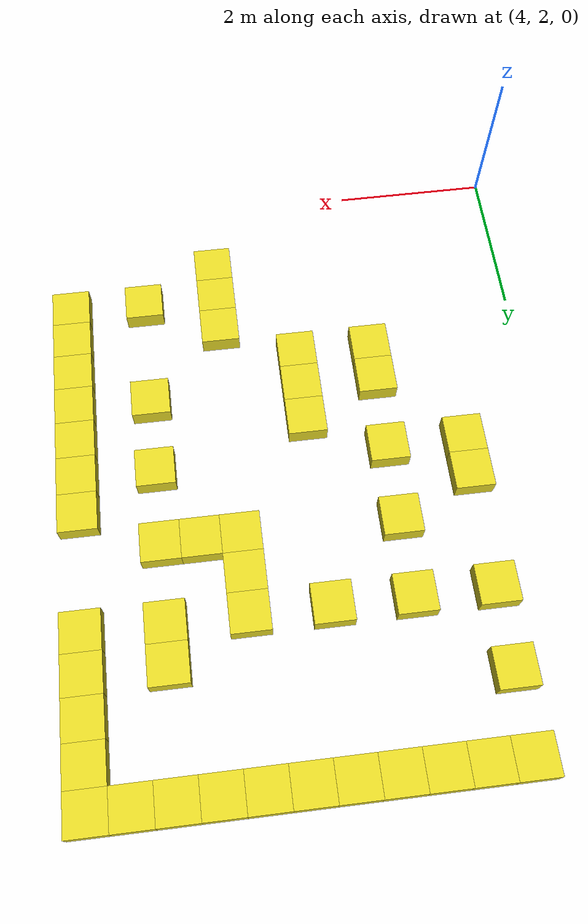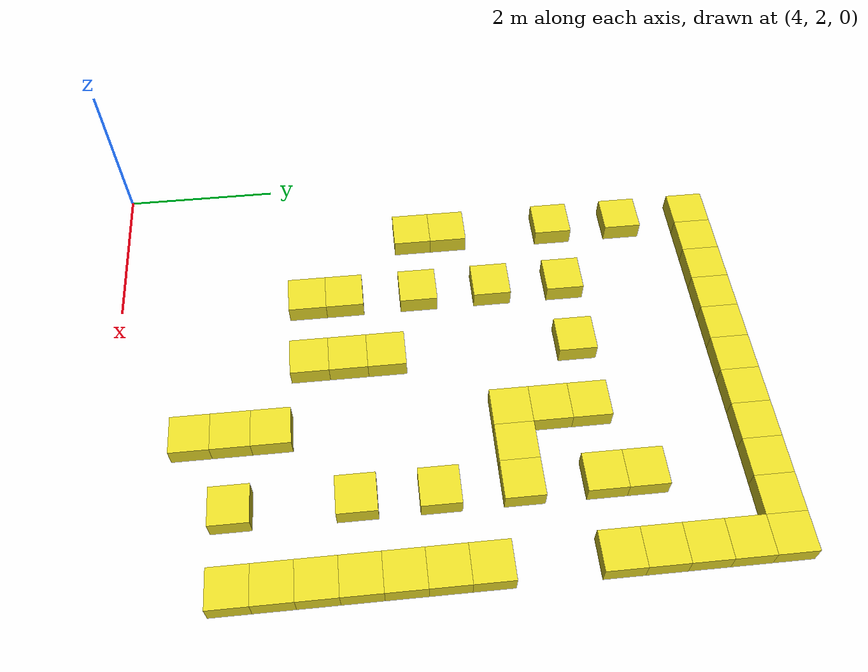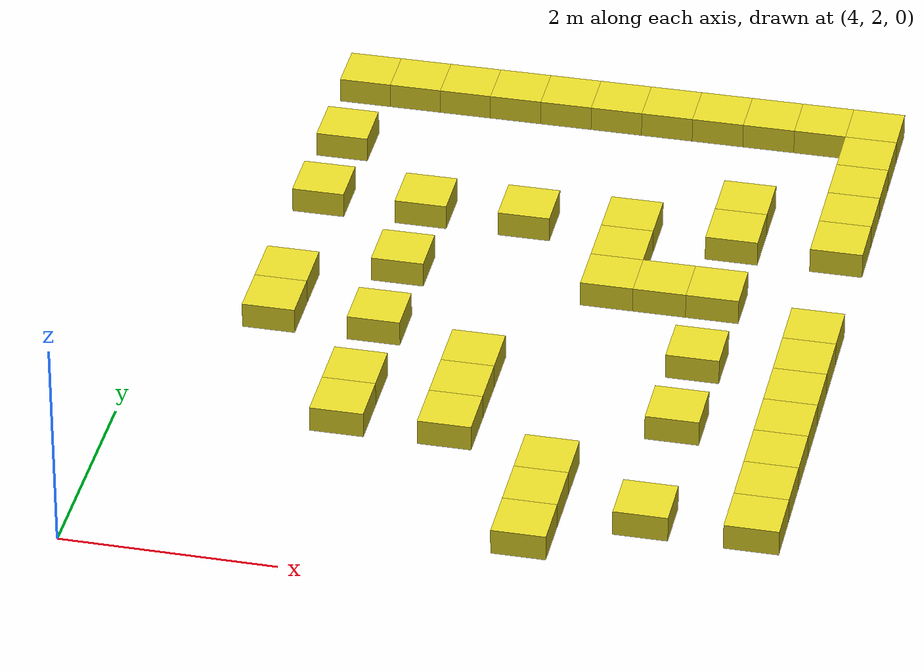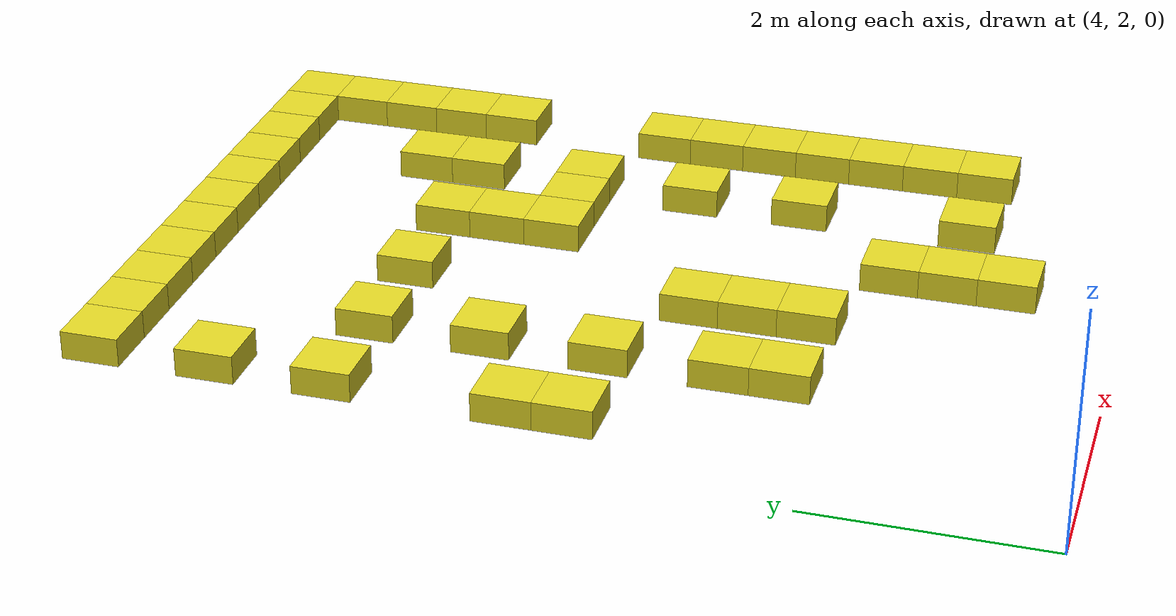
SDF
<sdf version="1.5">
 <world name="default">
  <include><uri>model://sun</uri></include>
  <model name="unit_box_53">
   <pose>5.000000 10.000000 0 0 -0 0</pose>
   <link name="link">
    <inertial>
     <mass>1</mass>
     <inertia><ixx>1</ixx><ixy>0</ixy><ixz>0</ixz><iyy>1</iyy><iyz>0</iyz><izz>1</izz></inertia>
    </inertial>
    <collision name="collision">
     <geometry><box><size>0.500000 0.500000 0.250000</size></box></geometry>
    </collision>
    <visual name="visual">
     <geometry><box><size>0.500000 0.500000 0.250000</size></box></geometry>
     <material>
      <script><uri>file://media/materials/scripts/gazebo.material</uri><name>Gazebo/Yellow</name></script>
     </material>
    </visual>
    <velocity_decay><linear>0</linear><angular>0</angular></velocity_decay>
   </link>
   <static>1</static>
  </model>
  <model name="unit_box_54">
   <pose>5.500000 10.000000 0 0 -0 0</pose>
   <link name="link">
    <inertial>
     <mass>1</mass>
     <inertia><ixx>1</ixx><ixy>0</ixy><ixz>0</ixz><iyy>1</iyy><iyz>0</iyz><izz>1</izz></inertia>
    </inertial>
    <collision name="collision">
     <geometry><box><size>0.500000 0.500000 0.250000</size></box></geometry>
    </collision>
    <visual name="visual">
     <geometry><box><size>0.500000 0.500000 0.250000</size></box></geometry>
     <material>
      <script><uri>file://media/materials/scripts/gazebo.material</uri><name>Gazebo/Yellow</name></script>
     </material>
    </visual>
    <velocity_decay><linear>0</linear><angular>0</angular></velocity_decay>
   </link>
   <static>1</static>
  </model>
  <model name="unit_box_55">
   <pose>6.000000 10.000000 0 0 -0 0</pose>
   <link name="link">
    <inertial>
     <mass>1</mass>
     <inertia><ixx>1</ixx><ixy>0</ixy><ixz>0</ixz><iyy>1</iyy><iyz>0</iyz><izz>1</izz></inertia>
    </inertial>
    <collision name="collision">
     <geometry><box><size>0.500000 0.500000 0.250000</size></box></geometry>
    </collision>
    <visual name="visual">
     <geometry><box><size>0.500000 0.500000 0.250000</size></box></geometry>
     <material>
      <script><uri>file://media/materials/scripts/gazebo.material</uri><name>Gazebo/Yellow</name></script>
     </material>
    </visual>
    <velocity_decay><linear>0</linear><angular>0</angular></velocity_decay>
   </link>
   <static>1</static>
  </model>
  <model name="unit_box_56">
   <pose>6.500000 10.000000 0 0 -0 0</pose>
   <link name="link">
    <inertial>
     <mass>1</mass>
     <inertia><ixx>1</ixx><ixy>0</ixy><ixz>0</ixz><iyy>1</iyy><iyz>0</iyz><izz>1</izz></inertia>
    </inertial>
    <collision name="collision">
     <geometry><box><size>0.500000 0.500000 0.250000</size></box></geometry>
    </collision>
    <visual name="visual">
     <geometry><box><size>0.500000 0.500000 0.250000</size></box></geometry>
     <material>
      <script><uri>file://media/materials/scripts/gazebo.material</uri><name>Gazebo/Yellow</name></script>
     </material>
    </visual>
    <velocity_decay><linear>0</linear><angular>0</angular></velocity_decay>
   </link>
   <static>1</static>
  </model>
  <model name="unit_box_57">
   <pose>7.000000 10.000000 0 0 -0 0</pose>
   <link name="link">
    <inertial>
     <mass>1</mass>
     <inertia><ixx>1</ixx><ixy>0</ixy><ixz>0</ixz><iyy>1</iyy><iyz>0</iyz><izz>1</izz></inertia>
    </inertial>
    <collision name="collision">
     <geometry><box><size>0.500000 0.500000 0.250000</size></box></geometry>
    </collision>
    <visual name="visual">
     <geometry><box><size>0.500000 0.500000 0.250000</size></box></geometry>
     <material>
      <script><uri>file://media/materials/scripts/gazebo.material</uri><name>Gazebo/Yellow</name></script>
     </material>
    </visual>
    <velocity_decay><linear>0</linear><angular>0</angular></velocity_decay>
   </link>
   <static>1</static>
  </model>
  <model name="unit_box_58">
   <pose>7.500000 10.000000 0 0 -0 0</pose>
   <link name="link">
    <inertial>
     <mass>1</mass>
     <inertia><ixx>1</ixx><ixy>0</ixy><ixz>0</ixz><iyy>1</iyy><iyz>0</iyz><izz>1</izz></inertia>
    </inertial>
    <collision name="collision">
     <geometry><box><size>0.500000 0.500000 0.250000</size></box></geometry>
    </collision>
    <visual name="visual">
     <geometry><box><size>0.500000 0.500000 0.250000</size></box></geometry>
     <material>
      <script><uri>file://media/materials/scripts/gazebo.material</uri><name>Gazebo/Yellow</name></script>
     </material>
    </visual>
    <velocity_decay><linear>0</linear><angular>0</angular></velocity_decay>
   </link>
   <static>1</static>
  </model>
  <model name="unit_box_59">
   <pose>8.000000 10.000000 0 0 -0 0</pose>
   <link name="link">
    <inertial>
     <mass>1</mass>
     <inertia><ixx>1</ixx><ixy>0</ixy><ixz>0</ixz><iyy>1</iyy><iyz>0</iyz><izz>1</izz></inertia>
    </inertial>
    <collision name="collision">
     <geometry><box><size>0.500000 0.500000 0.250000</size></box></geometry>
    </collision>
    <visual name="visual">
     <geometry><box><size>0.500000 0.500000 0.250000</size></box></geometry>
     <material>
      <script><uri>file://media/materials/scripts/gazebo.material</uri><name>Gazebo/Yellow</name></script>
     </material>
    </visual>
    <velocity_decay><linear>0</linear><angular>0</angular></velocity_decay>
   </link>
   <static>1</static>
  </model>
  <model name="unit_box_60">
   <pose>8.500000 10.000000 0 0 -0 0</pose>
   <link name="link">
    <inertial>
     <mass>1</mass>
     <inertia><ixx>1</ixx><ixy>0</ixy><ixz>0</ixz><iyy>1</iyy><iyz>0</iyz><izz>1</izz></inertia>
    </inertial>
    <collision name="collision">
     <geometry><box><size>0.500000 0.500000 0.250000</size></box></geometry>
    </collision>
    <visual name="visual">
     <geometry><box><size>0.500000 0.500000 0.250000</size></box></geometry>
     <material>
      <script><uri>file://media/materials/scripts/gazebo.material</uri><name>Gazebo/Yellow</name></script>
     </material>
    </visual>
    <velocity_decay><linear>0</linear><angular>0</angular></velocity_decay>
   </link>
   <static>1</static>
  </model>
  <model name="unit_box_61">
   <pose>9.000000 10.000000 0 0 -0 0</pose>
   <link name="link">
    <inertial>
     <mass>1</mass>
     <inertia><ixx>1</ixx><ixy>0</ixy><ixz>0</ixz><iyy>1</iyy><iyz>0</iyz><izz>1</izz></inertia>
    </inertial>
    <collision name="collision">
     <geometry><box><size>0.500000 0.500000 0.250000</size></box></geometry>
    </collision>
    <visual name="visual">
     <geometry><box><size>0.500000 0.500000 0.250000</size></box></geometry>
     <material>
      <script><uri>file://media/materials/scripts/gazebo.material</uri><name>Gazebo/Yellow</name></script>
     </material>
    </visual>
    <velocity_decay><linear>0</linear><angular>0</angular></velocity_decay>
   </link>
   <static>1</static>
  </model>
  <model name="unit_box_62">
   <pose>9.500000 10.000000 0 0 -0 0</pose>
   <link name="link">
    <inertial>
     <mass>1</mass>
     <inertia><ixx>1</ixx><ixy>0</ixy><ixz>0</ixz><iyy>1</iyy><iyz>0</iyz><izz>1</izz></inertia>
    </inertial>
    <collision name="collision">
     <geometry><box><size>0.500000 0.500000 0.250000</size></box></geometry>
    </collision>
    <visual name="visual">
     <geometry><box><size>0.500000 0.500000 0.250000</size></box></geometry>
     <material>
      <script><uri>file://media/materials/scripts/gazebo.material</uri><name>Gazebo/Yellow</name></script>
     </material>
    </visual>
    <velocity_decay><linear>0</linear><angular>0</angular></velocity_decay>
   </link>
   <static>1</static>
  </model>
  <model name="unit_box_63">
   <pose>10.000000 10.000000 0 0 -0 0</pose>
   <link name="link">
    <inertial>
     <mass>1</mass>
     <inertia><ixx>1</ixx><ixy>0</ixy><ixz>0</ixz><iyy>1</iyy><iyz>0</iyz><izz>1</izz></inertia>
    </inertial>
    <collision name="collision">
     <geometry><box><size>0.500000 0.500000 0.250000</size></box></geometry>
    </collision>
    <visual name="visual">
     <geometry><box><size>0.500000 0.500000 0.250000</size></box></geometry>
     <material>
      <script><uri>file://media/materials/scripts/gazebo.material</uri><name>Gazebo/Yellow</name></script>
     </material>
    </visual>
    <velocity_decay><linear>0</linear><angular>0</angular></velocity_decay>
   </link>
   <static>1</static>
  </model>
  <model name="unit_box_71">
   <pose>10.000000 3.500000 0 0 -0 0</pose>
   <link name="link">
    <inertial>
     <mass>1</mass>
     <inertia><ixx>1</ixx><ixy>0</ixy><ixz>0</ixz><iyy>1</iyy><iyz>0</iyz><izz>1</izz></inertia>
    </inertial>
    <collision name="collision">
     <geometry><box><size>0.500000 0.500000 0.250000</size></box></geometry>
    </collision>
    <visual name="visual">
     <geometry><box><size>0.500000 0.500000 0.250000</size></box></geometry>
     <material>
      <script><uri>file://media/materials/scripts/gazebo.material</uri><name>Gazebo/Yellow</name></script>
     </material>
    </visual>
    <velocity_decay><linear>0</linear><angular>0</angular></velocity_decay>
   </link>
   <static>1</static>
  </model>
  <model name="unit_box_72">
   <pose>10.000000 4.000000 0 0 -0 0</pose>
   <link name="link">
    <inertial>
     <mass>1</mass>
     <inertia><ixx>1</ixx><ixy>0</ixy><ixz>0</ixz><iyy>1</iyy><iyz>0</iyz><izz>1</izz></inertia>
    </inertial>
    <collision name="collision">
     <geometry><box><size>0.500000 0.500000 0.250000</size></box></geometry>
    </collision>
    <visual name="visual">
     <geometry><box><size>0.500000 0.500000 0.250000</size></box></geometry>
     <material>
      <script><uri>file://media/materials/scripts/gazebo.material</uri><name>Gazebo/Yellow</name></script>
     </material>
    </visual>
    <velocity_decay><linear>0</linear><angular>0</angular></velocity_decay>
   </link>
   <static>1</static>
  </model>
  <model name="unit_box_73">
   <pose>10.000000 4.500000 0 0 -0 0</pose>
   <link name="link">
    <inertial>
     <mass>1</mass>
     <inertia><ixx>1</ixx><ixy>0</ixy><ixz>0</ixz><iyy>1</iyy><iyz>0</iyz><izz>1</izz></inertia>
    </inertial>
    <collision name="collision">
     <geometry><box><size>0.500000 0.500000 0.250000</size></box></geometry>
    </collision>
    <visual name="visual">
     <geometry><box><size>0.500000 0.500000 0.250000</size></box></geometry>
     <material>
      <script><uri>file://media/materials/scripts/gazebo.material</uri><name>Gazebo/Yellow</name></script>
     </material>
    </visual>
    <velocity_decay><linear>0</linear><angular>0</angular></velocity_decay>
   </link>
   <static>1</static>
  </model>
  <model name="unit_box_74">
   <pose>10.000000 5.000000 0 0 -0 0</pose>
   <link name="link">
    <inertial>
     <mass>1</mass>
     <inertia><ixx>1</ixx><ixy>0</ixy><ixz>0</ixz><iyy>1</iyy><iyz>0</iyz><izz>1</izz></inertia>
    </inertial>
    <collision name="collision">
     <geometry><box><size>0.500000 0.500000 0.250000</size></box></geometry>
    </collision>
    <visual name="visual">
     <geometry><box><size>0.500000 0.500000 0.250000</size></box></geometry>
     <material>
      <script><uri>file://media/materials/scripts/gazebo.material</uri><name>Gazebo/Yellow</name></script>
     </material>
    </visual>
    <velocity_decay><linear>0</linear><angular>0</angular></velocity_decay>
   </link>
   <static>1</static>
  </model>
  <model name="unit_box_75">
   <pose>10.000000 5.500000 0 0 -0 0</pose>
   <link name="link">
    <inertial>
     <mass>1</mass>
     <inertia><ixx>1</ixx><ixy>0</ixy><ixz>0</ixz><iyy>1</iyy><iyz>0</iyz><izz>1</izz></inertia>
    </inertial>
    <collision name="collision">
     <geometry><box><size>0.500000 0.500000 0.250000</size></box></geometry>
    </collision>
    <visual name="visual">
     <geometry><box><size>0.500000 0.500000 0.250000</size></box></geometry>
     <material>
      <script><uri>file://media/materials/scripts/gazebo.material</uri><name>Gazebo/Yellow</name></script>
     </material>
    </visual>
    <velocity_decay><linear>0</linear><angular>0</angular></velocity_decay>
   </link>
   <static>1</static>
  </model>
  <model name="unit_box_76">
   <pose>10.000000 6.000000 0 0 -0 0</pose>
   <link name="link">
    <inertial>
     <mass>1</mass>
     <inertia><ixx>1</ixx><ixy>0</ixy><ixz>0</ixz><iyy>1</iyy><iyz>0</iyz><izz>1</izz></inertia>
    </inertial>
    <collision name="collision">
     <geometry><box><size>0.500000 0.500000 0.250000</size></box></geometry>
    </collision>
    <visual name="visual">
     <geometry><box><size>0.500000 0.500000 0.250000</size></box></geometry>
     <material>
      <script><uri>file://media/materials/scripts/gazebo.material</uri><name>Gazebo/Yellow</name></script>
     </material>
    </visual>
    <velocity_decay><linear>0</linear><angular>0</angular></velocity_decay>
   </link>
   <static>1</static>
  </model>
  <model name="unit_box_77">
   <pose>10.000000 6.500000 0 0 -0 0</pose>
   <link name="link">
    <inertial>
     <mass>1</mass>
     <inertia><ixx>1</ixx><ixy>0</ixy><ixz>0</ixz><iyy>1</iyy><iyz>0</iyz><izz>1</izz></inertia>
    </inertial>
    <collision name="collision">
     <geometry><box><size>0.500000 0.500000 0.250000</size></box></geometry>
    </collision>
    <visual name="visual">
     <geometry><box><size>0.500000 0.500000 0.250000</size></box></geometry>
     <material>
      <script><uri>file://media/materials/scripts/gazebo.material</uri><name>Gazebo/Yellow</name></script>
     </material>
    </visual>
    <velocity_decay><linear>0</linear><angular>0</angular></velocity_decay>
   </link>
   <static>1</static>
  </model>
  <model name="unit_box_78">
   <pose>10.000000 8.000000 0 0 -0 0</pose>
   <link name="link">
    <inertial>
     <mass>1</mass>
     <inertia><ixx>1</ixx><ixy>0</ixy><ixz>0</ixz><iyy>1</iyy><iyz>0</iyz><izz>1</izz></inertia>
    </inertial>
    <collision name="collision">
     <geometry><box><size>0.500000 0.500000 0.250000</size></box></geometry>
    </collision>
    <visual name="visual">
     <geometry><box><size>0.500000 0.500000 0.250000</size></box></geometry>
     <material>
      <script><uri>file://media/materials/scripts/gazebo.material</uri><name>Gazebo/Yellow</name></script>
     </material>
    </visual>
    <velocity_decay><linear>0</linear><angular>0</angular></velocity_decay>
   </link>
   <static>1</static>
  </model>
  <model name="unit_box_79">
   <pose>10.000000 8.500000 0 0 -0 0</pose>
   <link name="link">
    <inertial>
     <mass>1</mass>
     <inertia><ixx>1</ixx><ixy>0</ixy><ixz>0</ixz><iyy>1</iyy><iyz>0</iyz><izz>1</izz></inertia>
    </inertial>
    <collision name="collision">
     <geometry><box><size>0.500000 0.500000 0.250000</size></box></geometry>
    </collision>
    <visual name="visual">
     <geometry><box><size>0.500000 0.500000 0.250000</size></box></geometry>
     <material>
      <script><uri>file://media/materials/scripts/gazebo.material</uri><name>Gazebo/Yellow</name></script>
     </material>
    </visual>
    <velocity_decay><linear>0</linear><angular>0</angular></velocity_decay>
   </link>
   <static>1</static>
  </model>
  <model name="unit_box_80">
   <pose>10.000000 9.000000 0 0 -0 0</pose>
   <link name="link">
    <inertial>
     <mass>1</mass>
     <inertia><ixx>1</ixx><ixy>0</ixy><ixz>0</ixz><iyy>1</iyy><iyz>0</iyz><izz>1</izz></inertia>
    </inertial>
    <collision name="collision">
     <geometry><box><size>0.500000 0.500000 0.250000</size></box></geometry>
    </collision>
    <visual name="visual">
     <geometry><box><size>0.500000 0.500000 0.250000</size></box></geometry>
     <material>
      <script><uri>file://media/materials/scripts/gazebo.material</uri><name>Gazebo/Yellow</name></script>
     </material>
    </visual>
    <velocity_decay><linear>0</linear><angular>0</angular></velocity_decay>
   </link>
   <static>1</static>
  </model>
  <model name="unit_box_81">
   <pose>10.000000 9.500000 0 0 -0 0</pose>
   <link name="link">
    <inertial>
     <mass>1</mass>
     <inertia><ixx>1</ixx><ixy>0</ixy><ixz>0</ixz><iyy>1</iyy><iyz>0</iyz><izz>1</izz></inertia>
    </inertial>
    <collision name="collision">
     <geometry><box><size>0.500000 0.500000 0.250000</size></box></geometry>
    </collision>
    <visual name="visual">
     <geometry><box><size>0.500000 0.500000 0.250000</size></box></geometry>
     <material>
      <script><uri>file://media/materials/scripts/gazebo.material</uri><name>Gazebo/Yellow</name></script>
     </material>
    </visual>
    <velocity_decay><linear>0</linear><angular>0</angular></velocity_decay>
   </link>
   <static>1</static>
  </model>
  <model name="unit_box_82">
   <pose>10.000000 10.000000 0 0 -0 0</pose>
   <link name="link">
    <inertial>
     <mass>1</mass>
     <inertia><ixx>1</ixx><ixy>0</ixy><ixz>0</ixz><iyy>1</iyy><iyz>0</iyz><izz>1</izz></inertia>
    </inertial>
    <collision name="collision">
     <geometry><box><size>0.500000 0.500000 0.250000</size></box></geometry>
    </collision>
    <visual name="visual">
     <geometry><box><size>0.500000 0.500000 0.250000</size></box></geometry>
     <material>
      <script><uri>file://media/materials/scripts/gazebo.material</uri><name>Gazebo/Yellow</name></script>
     </material>
    </visual>
    <velocity_decay><linear>0</linear><angular>0</angular></velocity_decay>
   </link>
   <static>1</static>
  </model>
  <model name="unit_box_86">
   <pose>8.000000 7.500000 0 0 -0 0</pose>
   <link name="link">
    <inertial>
     <mass>1</mass>
     <inertia><ixx>1</ixx><ixy>0</ixy><ixz>0</ixz><iyy>1</iyy><iyz>0</iyz><izz>1</izz></inertia>
    </inertial>
    <collision name="collision">
     <geometry><box><size>0.500000 0.500000 0.250000</size></box></geometry>
    </collision>
    <visual name="visual">
     <geometry><box><size>0.500000 0.500000 0.250000</size></box></geometry>
     <material>
      <script><uri>file://media/materials/scripts/gazebo.material</uri><name>Gazebo/Yellow</name></script>
     </material>
    </visual>
    <velocity_decay><linear>0</linear><angular>0</angular></velocity_decay>
   </link>
   <static>1</static>
  </model>
  <model name="unit_box_87">
   <pose>5.000000 8.000000 0 0 -0 0</pose>
   <link name="link">
    <inertial>
     <mass>1</mass>
     <inertia><ixx>1</ixx><ixy>0</ixy><ixz>0</ixz><iyy>1</iyy><iyz>0</iyz><izz>1</izz></inertia>
    </inertial>
    <collision name="collision">
     <geometry><box><size>0.500000 0.500000 0.250000</size></box></geometry>
    </collision>
    <visual name="visual">
     <geometry><box><size>0.500000 0.500000 0.250000</size></box></geometry>
     <material>
      <script><uri>file://media/materials/scripts/gazebo.material</uri><name>Gazebo/Yellow</name></script>
     </material>
    </visual>
    <velocity_decay><linear>0</linear><angular>0</angular></velocity_decay>
   </link>
   <static>1</static>
  </model>
  <model name="unit_box_88">
   <pose>5.000000 6.000000 0 0 -0 0</pose>
   <link name="link">
    <inertial>
     <mass>1</mass>
     <inertia><ixx>1</ixx><ixy>0</ixy><ixz>0</ixz><iyy>1</iyy><iyz>0</iyz><izz>1</izz></inertia>
    </inertial>
    <collision name="collision">
     <geometry><box><size>0.500000 0.500000 0.250000</size></box></geometry>
    </collision>
    <visual name="visual">
     <geometry><box><size>0.500000 0.500000 0.250000</size></box></geometry>
     <material>
      <script><uri>file://media/materials/scripts/gazebo.material</uri><name>Gazebo/Yellow</name></script>
     </material>
    </visual>
    <velocity_decay><linear>0</linear><angular>0</angular></velocity_decay>
   </link>
   <static>1</static>
  </model>
  <model name="unit_box_89">
   <pose>6.000000 6.000000 0 0 -0 0</pose>
   <link name="link">
    <inertial>
     <mass>1</mass>
     <inertia><ixx>1</ixx><ixy>0</ixy><ixz>0</ixz><iyy>1</iyy><iyz>0</iyz><izz>1</izz></inertia>
    </inertial>
    <collision name="collision">
     <geometry><box><size>0.500000 0.500000 0.250000</size></box></geometry>
    </collision>
    <visual name="visual">
     <geometry><box><size>0.500000 0.500000 0.250000</size></box></geometry>
     <material>
      <script><uri>file://media/materials/scripts/gazebo.material</uri><name>Gazebo/Yellow</name></script>
     </material>
    </visual>
    <velocity_decay><linear>0</linear><angular>0</angular></velocity_decay>
   </link>
   <static>1</static>
  </model>
  <model name="unit_box_94">
   <pose>6.000000 6.000000 0 0 -0 0</pose>
   <link name="link">
    <inertial>
     <mass>1</mass>
     <inertia><ixx>1</ixx><ixy>0</ixy><ixz>0</ixz><iyy>1</iyy><iyz>0</iyz><izz>1</izz></inertia>
    </inertial>
    <collision name="collision">
     <geometry><box><size>0.500000 0.500000 0.250000</size></box></geometry>
    </collision>
    <visual name="visual">
     <geometry><box><size>0.500000 0.500000 0.250000</size></box></geometry>
     <material>
      <script><uri>file://media/materials/scripts/gazebo.material</uri><name>Gazebo/Yellow</name></script>
     </material>
    </visual>
    <velocity_decay><linear>0</linear><angular>0</angular></velocity_decay>
   </link>
   <static>1</static>
  </model>
  <model name="unit_box_95">
   <pose>6.000000 6.000000 0 0 -0 0</pose>
   <link name="link">
    <inertial>
     <mass>1</mass>
     <inertia><ixx>1</ixx><ixy>0</ixy><ixz>0</ixz><iyy>1</iyy><iyz>0</iyz><izz>1</izz></inertia>
    </inertial>
    <collision name="collision">
     <geometry><box><size>0.500000 0.500000 0.250000</size></box></geometry>
    </collision>
    <visual name="visual">
     <geometry><box><size>0.500000 0.500000 0.250000</size></box></geometry>
     <material>
      <script><uri>file://media/materials/scripts/gazebo.material</uri><name>Gazebo/Yellow</name></script>
     </material>
    </visual>
    <velocity_decay><linear>0</linear><angular>0</angular></velocity_decay>
   </link>
   <static>1</static>
  </model>
  <model name="unit_box_99">
   <pose>7.000000 5.000000 0 0 -0 0</pose>
   <link name="link">
    <inertial>
     <mass>1</mass>
     <inertia><ixx>1</ixx><ixy>0</ixy><ixz>0</ixz><iyy>1</iyy><iyz>0</iyz><izz>1</izz></inertia>
    </inertial>
    <collision name="collision">
     <geometry><box><size>0.500000 0.500000 0.250000</size></box></geometry>
    </collision>
    <visual name="visual">
     <geometry><box><size>0.500000 0.500000 0.250000</size></box></geometry>
     <material>
      <script><uri>file://media/materials/scripts/gazebo.material</uri><name>Gazebo/Yellow</name></script>
     </material>
    </visual>
    <velocity_decay><linear>0</linear><angular>0</angular></velocity_decay>
   </link>
   <static>1</static>
  </model>
  <model name="unit_box_101">
   <pose>8.000000 4.000000 0 0 -0 0</pose>
   <link name="link">
    <inertial>
     <mass>1</mass>
     <inertia><ixx>1</ixx><ixy>0</ixy><ixz>0</ixz><iyy>1</iyy><iyz>0</iyz><izz>1</izz></inertia>
    </inertial>
    <collision name="collision">
     <geometry><box><size>0.500000 0.500000 0.250000</size></box></geometry>
    </collision>
    <visual name="visual">
     <geometry><box><size>0.500000 0.500000 0.250000</size></box></geometry>
     <material>
      <script><uri>file://media/materials/scripts/gazebo.material</uri><name>Gazebo/Yellow</name></script>
     </material>
    </visual>
    <velocity_decay><linear>0</linear><angular>0</angular></velocity_decay>
   </link>
   <static>1</static>
  </model>
  <model name="unit_box_102">
   <pose>9.000000 3.500000 0 0 -0 0</pose>
   <link name="link">
    <inertial>
     <mass>1</mass>
     <inertia><ixx>1</ixx><ixy>0</ixy><ixz>0</ixz><iyy>1</iyy><iyz>0</iyz><izz>1</izz></inertia>
    </inertial>
    <collision name="collision">
     <geometry><box><size>0.500000 0.500000 0.250000</size></box></geometry>
    </collision>
    <visual name="visual">
     <geometry><box><size>0.500000 0.500000 0.250000</size></box></geometry>
     <material>
      <script><uri>file://media/materials/scripts/gazebo.material</uri><name>Gazebo/Yellow</name></script>
     </material>
    </visual>
    <velocity_decay><linear>0</linear><angular>0</angular></velocity_decay>
   </link>
   <static>1</static>
  </model>
  <model name="unit_box_105">
   <pose>5.000000 9.000000 0 0 -0 0</pose>
   <link name="link">
    <inertial>
     <mass>1</mass>
     <inertia><ixx>1</ixx><ixy>0</ixy><ixz>0</ixz><iyy>1</iyy><iyz>0</iyz><izz>1</izz></inertia>
    </inertial>
    <collision name="collision">
     <geometry><box><size>0.500000 0.500000 0.250000</size></box></geometry>
    </collision>
    <visual name="visual">
     <geometry><box><size>0.500000 0.500000 0.250000</size></box></geometry>
     <material>
      <script><uri>file://media/materials/scripts/gazebo.material</uri><name>Gazebo/Yellow</name></script>
     </material>
    </visual>
    <velocity_decay><linear>0</linear><angular>0</angular></velocity_decay>
   </link>
   <static>1</static>
  </model>
  <model name="unit_box_106">
   <pose>9.000000 8.500000 0 0 -0 0</pose>
   <link name="link">
    <inertial>
     <mass>1</mass>
     <inertia><ixx>1</ixx><ixy>0</ixy><ixz>0</ixz><iyy>1</iyy><iyz>0</iyz><izz>1</izz></inertia>
    </inertial>
    <collision name="collision">
     <geometry><box><size>0.500000 0.500000 0.250000</size></box></geometry>
    </collision>
    <visual name="visual">
     <geometry><box><size>0.500000 0.500000 0.250000</size></box></geometry>
     <material>
      <script><uri>file://media/materials/scripts/gazebo.material</uri><name>Gazebo/Yellow</name></script>
     </material>
    </visual>
    <velocity_decay><linear>0</linear><angular>0</angular></velocity_decay>
   </link>
   <static>1</static>
  </model>
  <model name="unit_box_107">
   <pose>7.000000 8.000000 0 0 -0 0</pose>
   <link name="link">
    <inertial>
     <mass>1</mass>
     <inertia><ixx>1</ixx><ixy>0</ixy><ixz>0</ixz><iyy>1</iyy><iyz>0</iyz><izz>1</izz></inertia>
    </inertial>
    <collision name="collision">
     <geometry><box><size>0.500000 0.500000 0.250000</size></box></geometry>
    </collision>
    <visual name="visual">
     <geometry><box><size>0.500000 0.500000 0.250000</size></box></geometry>
     <material>
      <script><uri>file://media/materials/scripts/gazebo.material</uri><name>Gazebo/Yellow</name></script>
     </material>
    </visual>
    <velocity_decay><linear>0</linear><angular>0</angular></velocity_decay>
   </link>
   <static>1</static>
  </model>
  <model name="unit_box_111">
   <pose>6.000000 7.000000 0 0 -0 0</pose>
   <link name="link">
    <inertial>
     <mass>1</mass>
     <inertia><ixx>1</ixx><ixy>0</ixy><ixz>0</ixz><iyy>1</iyy><iyz>0</iyz><izz>1</izz></inertia>
    </inertial>
    <collision name="collision">
     <geometry><box><size>0.500000 0.500000 0.250000</size></box></geometry>
    </collision>
    <visual name="visual">
     <geometry><box><size>0.500000 0.500000 0.250000</size></box></geometry>
     <material>
      <script><uri>file://media/materials/scripts/gazebo.material</uri><name>Gazebo/Yellow</name></script>
     </material>
    </visual>
    <velocity_decay><linear>0</linear><angular>0</angular></velocity_decay>
   </link>
   <static>1</static>
  </model>
  <model name="unit_box_112">
   <pose>5.000000 6.500000 0 0 -0 0</pose>
   <link name="link">
    <inertial>
     <mass>1</mass>
     <inertia><ixx>1</ixx><ixy>0</ixy><ixz>0</ixz><iyy>1</iyy><iyz>0</iyz><izz>1</izz></inertia>
    </inertial>
    <collision name="collision">
     <geometry><box><size>0.500000 0.500000 0.250000</size></box></geometry>
    </collision>
    <visual name="visual">
     <geometry><box><size>0.500000 0.500000 0.250000</size></box></geometry>
     <material>
      <script><uri>file://media/materials/scripts/gazebo.material</uri><name>Gazebo/Yellow</name></script>
     </material>
    </visual>
    <velocity_decay><linear>0</linear><angular>0</angular></velocity_decay>
   </link>
   <static>1</static>
  </model>
  <model name="unit_box_113">
   <pose>9.000000 6.000000 0 0 -0 0</pose>
   <link name="link">
    <inertial>
     <mass>1</mass>
     <inertia><ixx>1</ixx><ixy>0</ixy><ixz>0</ixz><iyy>1</iyy><iyz>0</iyz><izz>1</izz></inertia>
    </inertial>
    <collision name="collision">
     <geometry><box><size>0.500000 0.500000 0.250000</size></box></geometry>
    </collision>
    <visual name="visual">
     <geometry><box><size>0.500000 0.500000 0.250000</size></box></geometry>
     <material>
      <script><uri>file://media/materials/scripts/gazebo.material</uri><name>Gazebo/Yellow</name></script>
     </material>
    </visual>
    <velocity_decay><linear>0</linear><angular>0</angular></velocity_decay>
   </link>
   <static>1</static>
  </model>
  <model name="unit_box_115">
   <pose>6.000000 5.000000 0 0 -0 0</pose>
   <link name="link">
    <inertial>
     <mass>1</mass>
     <inertia><ixx>1</ixx><ixy>0</ixy><ixz>0</ixz><iyy>1</iyy><iyz>0</iyz><izz>1</izz></inertia>
    </inertial>
    <collision name="collision">
     <geometry><box><size>0.500000 0.500000 0.250000</size></box></geometry>
    </collision>
    <visual name="visual">
     <geometry><box><size>0.500000 0.500000 0.250000</size></box></geometry>
     <material>
      <script><uri>file://media/materials/scripts/gazebo.material</uri><name>Gazebo/Yellow</name></script>
     </material>
    </visual>
    <velocity_decay><linear>0</linear><angular>0</angular></velocity_decay>
   </link>
   <static>1</static>
  </model>
  <model name="unit_box_116">
   <pose>7.000000 4.500000 0 0 -0 0</pose>
   <link name="link">
    <inertial>
     <mass>1</mass>
     <inertia><ixx>1</ixx><ixy>0</ixy><ixz>0</ixz><iyy>1</iyy><iyz>0</iyz><izz>1</izz></inertia>
    </inertial>
    <collision name="collision">
     <geometry><box><size>0.500000 0.500000 0.250000</size></box></geometry>
    </collision>
    <visual name="visual">
     <geometry><box><size>0.500000 0.500000 0.250000</size></box></geometry>
     <material>
      <script><uri>file://media/materials/scripts/gazebo.material</uri><name>Gazebo/Yellow</name></script>
     </material>
    </visual>
    <velocity_decay><linear>0</linear><angular>0</angular></velocity_decay>
   </link>
   <static>1</static>
  </model>
  <model name="unit_box_122">
   <pose>9.000000 7.000000 0 0 -0 0</pose>
   <link name="link">
    <inertial>
     <mass>1</mass>
     <inertia><ixx>1</ixx><ixy>0</ixy><ixz>0</ixz><iyy>1</iyy><iyz>0</iyz><izz>1</izz></inertia>
    </inertial>
    <collision name="collision">
     <geometry><box><size>0.500000 0.500000 0.250000</size></box></geometry>
    </collision>
    <visual name="visual">
     <geometry><box><size>0.500000 0.500000 0.250000</size></box></geometry>
     <material>
      <script><uri>file://media/materials/scripts/gazebo.material</uri><name>Gazebo/Yellow</name></script>
     </material>
    </visual>
    <velocity_decay><linear>0</linear><angular>0</angular></velocity_decay>
   </link>
   <static>1</static>
  </model>
  <model name="unit_box_124">
   <pose>9.000000 6.000000 0 0 -0 0</pose>
   <link name="link">
    <inertial>
     <mass>1</mass>
     <inertia><ixx>1</ixx><ixy>0</ixy><ixz>0</ixz><iyy>1</iyy><iyz>0</iyz><izz>1</izz></inertia>
    </inertial>
    <collision name="collision">
     <geometry><box><size>0.500000 0.500000 0.250000</size></box></geometry>
    </collision>
    <visual name="visual">
     <geometry><box><size>0.500000 0.500000 0.250000</size></box></geometry>
     <material>
      <script><uri>file://media/materials/scripts/gazebo.material</uri><name>Gazebo/Yellow</name></script>
     </material>
    </visual>
    <velocity_decay><linear>0</linear><angular>0</angular></velocity_decay>
   </link>
   <static>1</static>
  </model>
  <model name="unit_box_125">
   <pose>7.000000 5.500000 0 0 -0 0</pose>
   <link name="link">
    <inertial>
     <mass>1</mass>
     <inertia><ixx>1</ixx><ixy>0</ixy><ixz>0</ixz><iyy>1</iyy><iyz>0</iyz><izz>1</izz></inertia>
    </inertial>
    <collision name="collision">
     <geometry><box><size>0.500000 0.500000 0.250000</size></box></geometry>
    </collision>
    <visual name="visual">
     <geometry><box><size>0.500000 0.500000 0.250000</size></box></geometry>
     <material>
      <script><uri>file://media/materials/scripts/gazebo.material</uri><name>Gazebo/Yellow</name></script>
     </material>
    </visual>
    <velocity_decay><linear>0</linear><angular>0</angular></velocity_decay>
   </link>
   <static>1</static>
  </model>
  <model name="unit_box_126">
   <pose>9.000000 5.000000 0 0 -0 0</pose>
   <link name="link">
    <inertial>
     <mass>1</mass>
     <inertia><ixx>1</ixx><ixy>0</ixy><ixz>0</ixz><iyy>1</iyy><iyz>0</iyz><izz>1</izz></inertia>
    </inertial>
    <collision name="collision">
     <geometry><box><size>0.500000 0.500000 0.250000</size></box></geometry>
    </collision>
    <visual name="visual">
     <geometry><box><size>0.500000 0.500000 0.250000</size></box></geometry>
     <material>
      <script><uri>file://media/materials/scripts/gazebo.material</uri><name>Gazebo/Yellow</name></script>
     </material>
    </visual>
    <velocity_decay><linear>0</linear><angular>0</angular></velocity_decay>
   </link>
   <static>1</static>
  </model>
  <model name="unit_box_129">
   <pose>8.000000 3.500000 0 0 -0 0</pose>
   <link name="link">
    <inertial>
     <mass>1</mass>
     <inertia><ixx>1</ixx><ixy>0</ixy><ixz>0</ixz><iyy>1</iyy><iyz>0</iyz><izz>1</izz></inertia>
    </inertial>
    <collision name="collision">
     <geometry><box><size>0.500000 0.500000 0.250000</size></box></geometry>
    </collision>
    <visual name="visual">
     <geometry><box><size>0.500000 0.500000 0.250000</size></box></geometry>
     <material>
      <script><uri>file://media/materials/scripts/gazebo.material</uri><name>Gazebo/Yellow</name></script>
     </material>
    </visual>
    <velocity_decay><linear>0</linear><angular>0</angular></velocity_decay>
   </link>
   <static>1</static>
  </model>
  <model name="unit_box_131">
   <pose>7.000000 8.000000 0 0 -0 0</pose>
   <link name="link">
    <inertial>
     <mass>1</mass>
     <inertia><ixx>1</ixx><ixy>0</ixy><ixz>0</ixz><iyy>1</iyy><iyz>0</iyz><izz>1</izz></inertia>
    </inertial>
    <collision name="collision">
     <geometry><box><size>0.500000 0.500000 0.250000</size></box></geometry>
    </collision>
    <visual name="visual">
     <geometry><box><size>0.500000 0.500000 0.250000</size></box></geometry>
     <material>
      <script><uri>file://media/materials/scripts/gazebo.material</uri><name>Gazebo/Yellow</name></script>
     </material>
    </visual>
    <velocity_decay><linear>0</linear><angular>0</angular></velocity_decay>
   </link>
   <static>1</static>
  </model>
  <model name="unit_box_132">
   <pose>7.000000 8.000000 0 0 -0 0</pose>
   <link name="link">
    <inertial>
     <mass>1</mass>
     <inertia><ixx>1</ixx><ixy>0</ixy><ixz>0</ixz><iyy>1</iyy><iyz>0</iyz><izz>1</izz></inertia>
    </inertial>
    <collision name="collision">
     <geometry><box><size>0.500000 0.500000 0.250000</size></box></geometry>
    </collision>
    <visual name="visual">
     <geometry><box><size>0.500000 0.500000 0.250000</size></box></geometry>
     <material>
      <script><uri>file://media/materials/scripts/gazebo.material</uri><name>Gazebo/Yellow</name></script>
     </material>
    </visual>
    <velocity_decay><linear>0</linear><angular>0</angular></velocity_decay>
   </link>
   <static>1</static>
  </model>
  <model name="unit_box_133">
   <pose>9.000000 8.000000 0 0 -0 0</pose>
   <link name="link">
    <inertial>
     <mass>1</mass>
     <inertia><ixx>1</ixx><ixy>0</ixy><ixz>0</ixz><iyy>1</iyy><iyz>0</iyz><izz>1</izz></inertia>
    </inertial>
    <collision name="collision">
     <geometry><box><size>0.500000 0.500000 0.250000</size></box></geometry>
    </collision>
    <visual name="visual">
     <geometry><box><size>0.500000 0.500000 0.250000</size></box></geometry>
     <material>
      <script><uri>file://media/materials/scripts/gazebo.material</uri><name>Gazebo/Yellow</name></script>
     </material>
    </visual>
    <velocity_decay><linear>0</linear><angular>0</angular></velocity_decay>
   </link>
   <static>1</static>
  </model>
  <model name="unit_box_134">
   <pose>8.000000 8.000000 0 0 -0 0</pose>
   <link name="link">
    <inertial>
     <mass>1</mass>
     <inertia><ixx>1</ixx><ixy>0</ixy><ixz>0</ixz><iyy>1</iyy><iyz>0</iyz><izz>1</izz></inertia>
    </inertial>
    <collision name="collision">
     <geometry><box><size>0.500000 0.500000 0.250000</size></box></geometry>
    </collision>
    <visual name="visual">
     <geometry><box><size>0.500000 0.500000 0.250000</size></box></geometry>
     <material>
      <script><uri>file://media/materials/scripts/gazebo.material</uri><name>Gazebo/Yellow</name></script>
     </material>
    </visual>
    <velocity_decay><linear>0</linear><angular>0</angular></velocity_decay>
   </link>
   <static>1</static>
  </model>
  <model name="unit_box_135">
   <pose>6.000000 8.000000 0 0 -0 0</pose>
   <link name="link">
    <inertial>
     <mass>1</mass>
     <inertia><ixx>1</ixx><ixy>0</ixy><ixz>0</ixz><iyy>1</iyy><iyz>0</iyz><izz>1</izz></inertia>
    </inertial>
    <collision name="collision">
     <geometry><box><size>0.500000 0.500000 0.250000</size></box></geometry>
    </collision>
    <visual name="visual">
     <geometry><box><size>0.500000 0.500000 0.250000</size></box></geometry>
     <material>
      <script><uri>file://media/materials/scripts/gazebo.material</uri><name>Gazebo/Yellow</name></script>
     </material>
    </visual>
    <velocity_decay><linear>0</linear><angular>0</angular></velocity_decay>
   </link>
   <static>1</static>
  </model>
  <model name="unit_box_139">
   <pose>6.000000 5.000000 0 0 -0 0</pose>
   <link name="link">
    <inertial>
     <mass>1</mass>
     <inertia><ixx>1</ixx><ixy>0</ixy><ixz>0</ixz><iyy>1</iyy><iyz>0</iyz><izz>1</izz></inertia>
    </inertial>
    <collision name="collision">
     <geometry><box><size>0.500000 0.500000 0.250000</size></box></geometry>
    </collision>
    <visual name="visual">
     <geometry><box><size>0.500000 0.500000 0.250000</size></box></geometry>
     <material>
      <script><uri>file://media/materials/scripts/gazebo.material</uri><name>Gazebo/Yellow</name></script>
     </material>
    </visual>
    <velocity_decay><linear>0</linear><angular>0</angular></velocity_decay>
   </link>
   <static>1</static>
  </model>
  <model name="unit_box_140">
   <pose>6.000000 5.000000 0 0 -0 0</pose>
   <link name="link">
    <inertial>
     <mass>1</mass>
     <inertia><ixx>1</ixx><ixy>0</ixy><ixz>0</ixz><iyy>1</iyy><iyz>0</iyz><izz>1</izz></inertia>
    </inertial>
    <collision name="collision">
     <geometry><box><size>0.500000 0.500000 0.250000</size></box></geometry>
    </collision>
    <visual name="visual">
     <geometry><box><size>0.500000 0.500000 0.250000</size></box></geometry>
     <material>
      <script><uri>file://media/materials/scripts/gazebo.material</uri><name>Gazebo/Yellow</name></script>
     </material>
    </visual>
    <velocity_decay><linear>0</linear><angular>0</angular></velocity_decay>
   </link>
   <static>1</static>
  </model>
  <model name="unit_box_141">
   <pose>8.000000 3.000000 0 0 -0 0</pose>
   <link name="link">
    <inertial>
     <mass>1</mass>
     <inertia><ixx>1</ixx><ixy>0</ixy><ixz>0</ixz><iyy>1</iyy><iyz>0</iyz><izz>1</izz></inertia>
    </inertial>
    <collision name="collision">
     <geometry><box><size>0.500000 0.500000 0.250000</size></box></geometry>
    </collision>
    <visual name="visual">
     <geometry><box><size>0.500000 0.500000 0.250000</size></box></geometry>
     <material>
      <script><uri>file://media/materials/scripts/gazebo.material</uri><name>Gazebo/Yellow</name></script>
     </material>
    </visual>
    <velocity_decay><linear>0</linear><angular>0</angular></velocity_decay>
   </link>
   <static>1</static>
  </model>
  <model name="unit_box_145">
   <pose>7.000000 4.500000 0 0 -0 0</pose>
   <link name="link">
    <inertial>
     <mass>1</mass>
     <inertia><ixx>1</ixx><ixy>0</ixy><ixz>0</ixz><iyy>1</iyy><iyz>0</iyz><izz>1</izz></inertia>
    </inertial>
    <collision name="collision">
     <geometry><box><size>0.500000 0.500000 0.250000</size></box></geometry>
    </collision>
    <visual name="visual">
     <geometry><box><size>0.500000 0.500000 0.250000</size></box></geometry>
     <material>
      <script><uri>file://media/materials/scripts/gazebo.material</uri><name>Gazebo/Yellow</name></script>
     </material>
    </visual>
    <velocity_decay><linear>0</linear><angular>0</angular></velocity_decay>
   </link>
   <static>1</static>
  </model>
  <model name="unit_box_147">
   <pose>6.000000 4.500000 0 0 -0 0</pose>
   <link name="link">
    <inertial>
     <mass>1</mass>
     <inertia><ixx>1</ixx><ixy>0</ixy><ixz>0</ixz><iyy>1</iyy><iyz>0</iyz><izz>1</izz></inertia>
    </inertial>
    <collision name="collision">
     <geometry><box><size>0.500000 0.500000 0.250000</size></box></geometry>
    </collision>
    <visual name="visual">
     <geometry><box><size>0.500000 0.500000 0.250000</size></box></geometry>
     <material>
      <script><uri>file://media/materials/scripts/gazebo.material</uri><name>Gazebo/Yellow</name></script>
     </material>
    </visual>
    <velocity_decay><linear>0</linear><angular>0</angular></velocity_decay>
   </link>
   <static>1</static>
  </model>
  <model name="unit_box_172">
   <pose>8.000000 7.000000 0 0 -0 0</pose>
   <link name="link">
    <inertial>
     <mass>1</mass>
     <inertia><ixx>1</ixx><ixy>0</ixy><ixz>0</ixz><iyy>1</iyy><iyz>0</iyz><izz>1</izz></inertia>
    </inertial>
    <collision name="collision">
     <geometry><box><size>0.500000 0.500000 0.250000</size></box></geometry>
    </collision>
    <visual name="visual">
     <geometry><box><size>0.500000 0.500000 0.250000</size></box></geometry>
     <material>
      <script><uri>file://media/materials/scripts/gazebo.material</uri><name>Gazebo/Yellow</name></script>
     </material>
    </visual>
    <velocity_decay><linear>0</linear><angular>0</angular></velocity_decay>
   </link>
   <static>1</static>
  </model>
  <model name="unit_box_173">
   <pose>8.500000 7.000000 0 0 -0 0</pose>
   <link name="link">
    <inertial>
     <mass>1</mass>
     <inertia><ixx>1</ixx><ixy>0</ixy><ixz>0</ixz><iyy>1</iyy><iyz>0</iyz><izz>1</izz></inertia>
    </inertial>
    <collision name="collision">
     <geometry><box><size>0.500000 0.500000 0.250000</size></box></geometry>
    </collision>
    <visual name="visual">
     <geometry><box><size>0.500000 0.500000 0.250000</size></box></geometry>
     <material>
      <script><uri>file://media/materials/scripts/gazebo.material</uri><name>Gazebo/Yellow</name></script>
     </material>
    </visual>
    <velocity_decay><linear>0</linear><angular>0</angular></velocity_decay>
   </link>
   <static>1</static>
  </model>
 </world>
</sdf>
